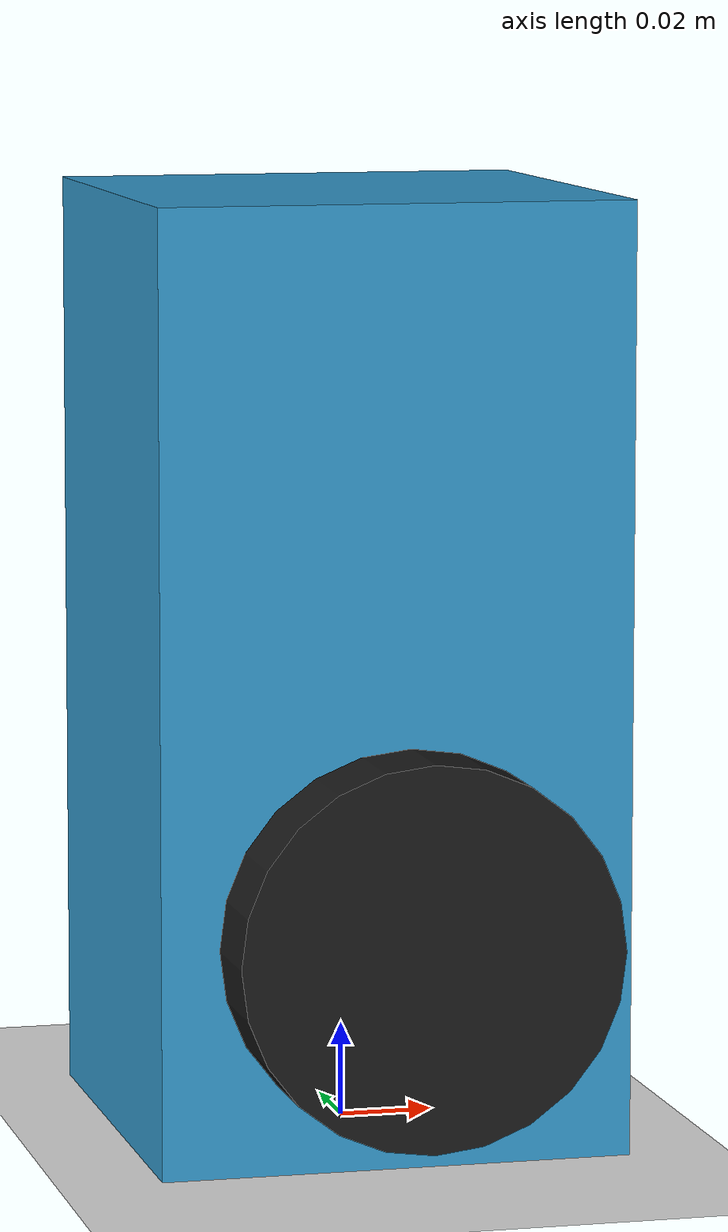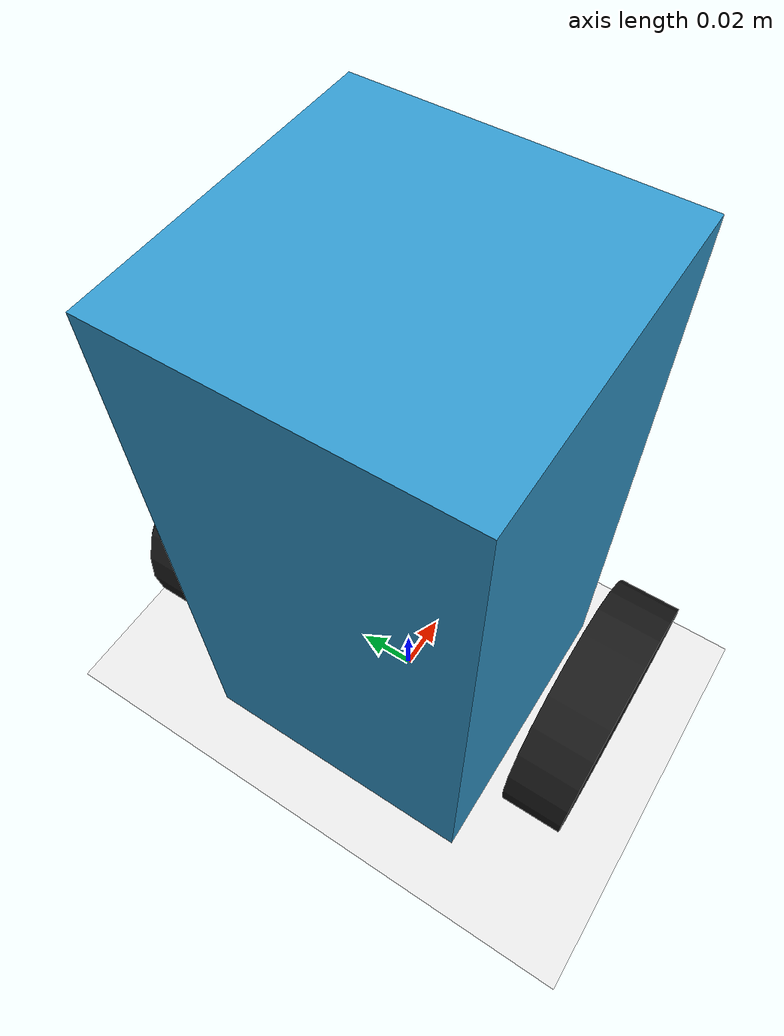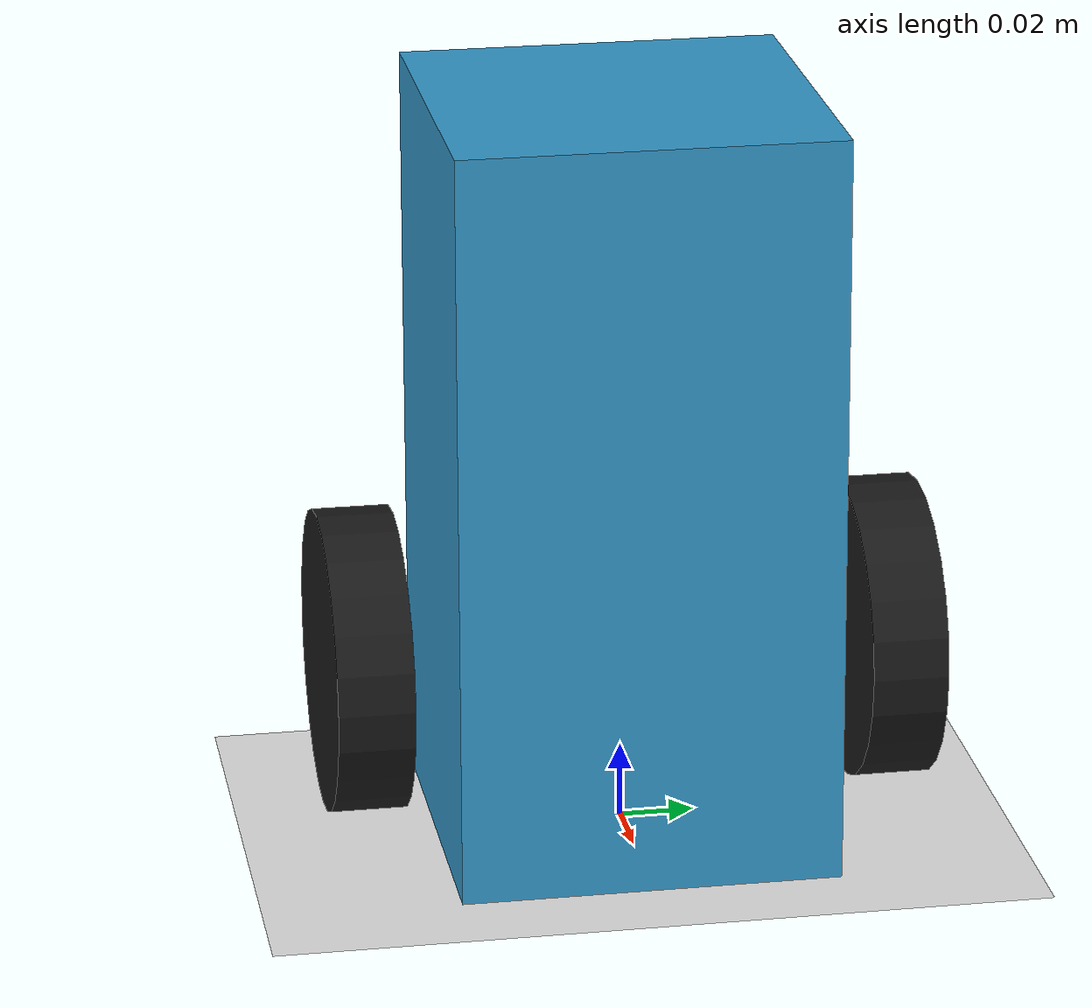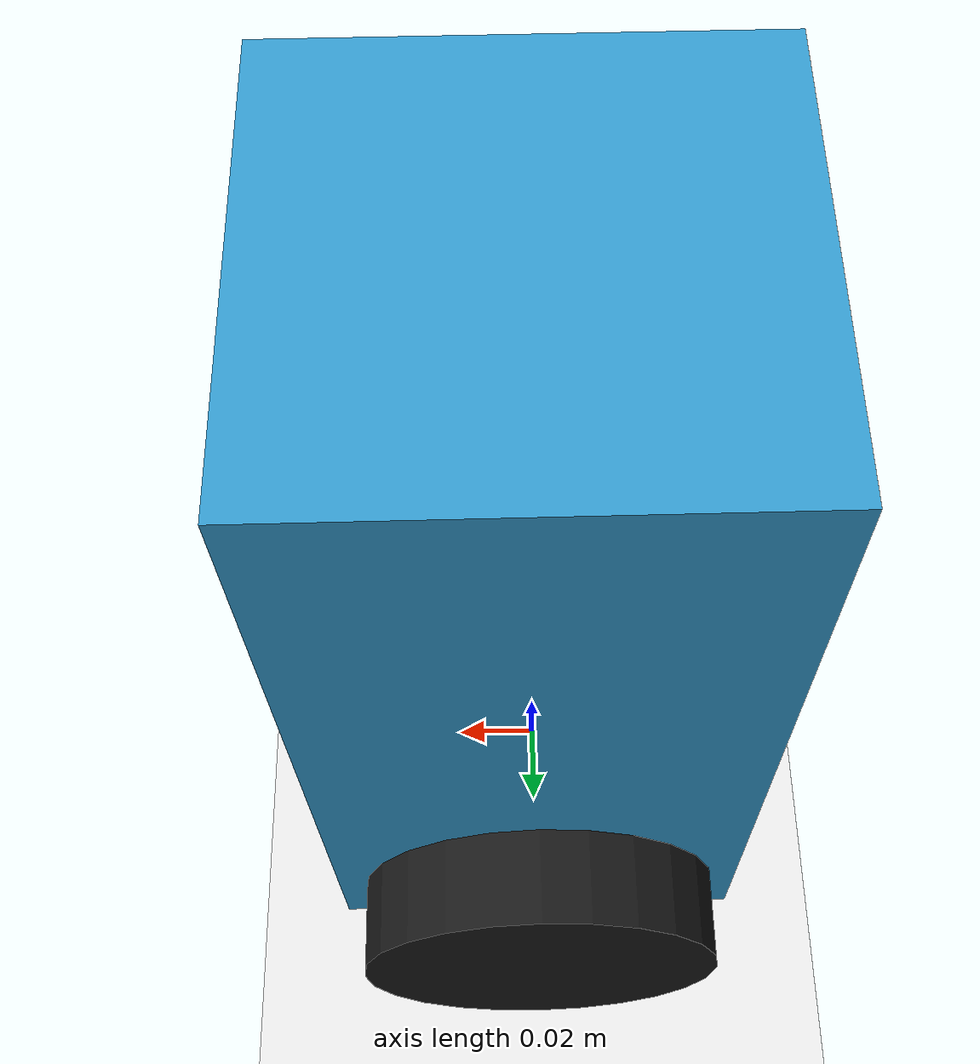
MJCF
<mujoco model="balance_bot">
    <compiler angle="degree"/>
    <option timestep="0.01" gravity="0 0 -9.81"/>

    <worldbody>
        <!-- Floor -->
        <geom type="plane" size="5 5 0.1" rgba=".9 .9 .9 1"/>
        <light pos="0 0 2"/>

        <!-- Robot Chassis -->
        <body name="chassis" pos="0 0 0.1">
            <freejoint/> <!-- Allow robot to fall and move in the world -->
            <geom type="box" size="0.05 0.05 0.1" rgba="0.2 0.6 0.8 1" mass="0.5"/>

            <!-- IMU Sensor Location -->
            <site name="imu_site" pos="0 0 0.05"/>

            <!-- Left Wheel -->
            <body name="left_wheel" pos="0 0.07 -0.05">
                <joint name="left_motor_joint" type="hinge" axis="0 1 0"/>
                <geom type="cylinder" size="0.04 0.01" rgba="0.1 0.1 0.1 1" mass="0.1" euler="90 0 0"/>
            </body>

            <!-- Right Wheel -->
            <body name="right_wheel" pos="0 -0.07 -0.05">
                <joint name="right_motor_joint" type="hinge" axis="0 1 0"/>
                <geom type="cylinder" size="0.04 0.01" rgba="0.1 0.1 0.1 1" mass="0.1" euler="90 0 0"/>
            </body>
        </body>
    </worldbody>

    <!-- Map motors to the wheel joints -->
    <actuator>
        <motor name="left_motor" joint="left_motor_joint" gear="1" ctrllimited="true" ctrlrange="-1 1"/>
        <motor name="right_motor" joint="right_motor_joint" gear="1" ctrllimited="true" ctrlrange="-1 1"/>
    </actuator>

    <!-- Read gyroscope and accelerometer data from the chassis -->
    <sensor>
        <gyro name="gyro" site="imu_site"/>
        <accelerometer name="accel" site="imu_site"/>
    </sensor>
</mujoco>
